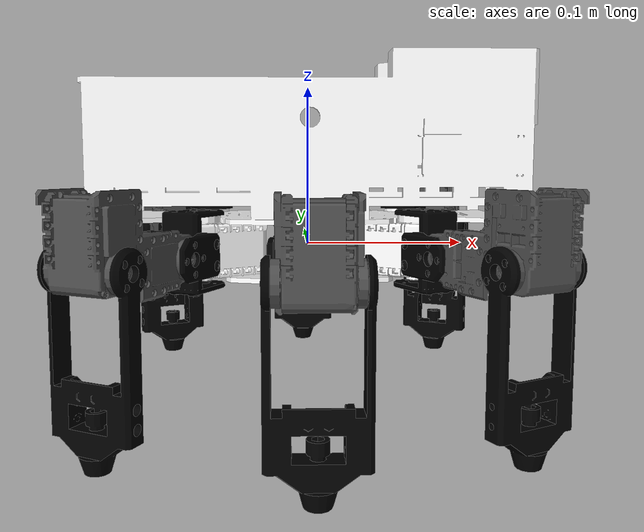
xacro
<?xml version="1.0" encoding="UTF-8" ?>
<robot xmlns:xacro="http://ros.org/wiki/xacro" name="reignblaze">

  <!-- Simplified model for simulation (no sensor accessories) -->

  <xacro:property name="pi" value="3.1415926535897931" />
  <xacro:property name="body_length_x" value="0.27" />
  <xacro:property name="body_length_y" value="0.09" />
  <xacro:property name="coxa_length" value="0.044" />
  <xacro:property name="femur_length" value="0.0545" />
  <xacro:property name="tibia_length" value="0.1019" />

  <link name="base_footprint"/>

  <joint name="base_joint" type="fixed">
    <parent link="base_footprint"/>
    <child link="base_link"/>
    <origin xyz="0 0 0" rpy="0 0 0"/>
  </joint>

  <link name="base_link"/>

  <joint name="body_joint" type="fixed">
    <parent link="base_link" />
    <child link="body_link" />
    <origin xyz="0.0 0.0 0.0" rpy="0.0 0.0 0.0" />
  </joint>

  <link name="body_link">
    <visual>
      <origin xyz="0.0 0.0 0.0" rpy="${pi/2} 0.0 0.0" />
      <geometry>
        <mesh filename="package://hexapod_description/meshes/reignblaze/body.stl" scale="0.001 0.001 0.001"/>
      </geometry>
      <material name="white">
        <color rgba="1.0 1.0 1.0 1.0"/>
      </material>
    </visual>
    <inertial>
      <origin xyz="0.0 0.0 0.0" rpy="0.0 0.0 0.0" />
      <mass value="0.84"/>
      <inertia
        ixx="0.001592" ixy="0.0"  ixz="0.0"
        iyy="0.006128" iyz="0.0"
        izz="0.005670" />
    </inertial>
  </link>

  <!-- Joint properties -->
  <xacro:property name="joint_lower_limit" value="-${pi}" />
  <xacro:property name="joint_upper_limit" value="${pi}" />
  <xacro:property name="joint_effort" value="6.0" />
  <xacro:property name="joint_velocity" value="0.524" />

  <!-- Leg macro -->
  <xacro:macro name="leg" params="side position x y angle axis">

    <!-- coxa -->
    <joint name="coxa_joint_${side}${position}" type="revolute">
      <origin xyz="${x} ${y} 0.0" rpy="0.0 0.0 ${angle}" />
      <parent link="body_link" />
      <child link="coxa_${side}${position}" />
      <axis xyz="0.0 0.0 1.0" />
      <limit lower="${joint_lower_limit}" upper="${joint_upper_limit}" effort="${joint_effort}" velocity="${joint_velocity}" />
    </joint>
    <link name="coxa_${side}${position}">
      <visual>
        <origin xyz="0.0 0.0 0.0" rpy="0.0 0.0 ${pi/2}"/>
        <geometry>
          <mesh filename="package://hexapod_description/meshes/reignblaze/coxa.stl" scale="0.001 0.001 0.001"/>
        </geometry>
        <material name="black">
          <color rgba="0.0 0.0 0.0 1.0"/>
        </material>
      </visual>
      <inertial>
        <origin xyz="-0.00225 0.0 0.0" rpy="0.0 0.0 0.0" />
        <mass value="0.056"/>
        <inertia
          ixx="0.000012245" ixy="0.0"  ixz="0.0"
          iyy="0.000010996" iyz="0.0"
          izz="0.000008308" />
      </inertial>
    </link>

    <!-- femur -->
    <joint name="femur_joint_${side}${position}" type="revolute">
      <origin xyz="${coxa_length} 0.0 0.0" rpy="-${pi/2} ${pi/2} 0.0" />
      <parent link="coxa_${side}${position}" />
      <child link="femur_${side}${position}" />
      <axis xyz="0.0 0.0 ${-axis}" />
      <limit lower="${joint_lower_limit}" upper="${joint_upper_limit}" effort="${joint_effort}" velocity="${joint_velocity}" />
    </joint>
    <link name="femur_${side}${position}">
      <visual>
        <origin xyz="0.0 0.0 0.0" rpy="0.0 -${pi/2} ${pi/2}"/>
        <geometry>
          <mesh filename="package://hexapod_description/meshes/reignblaze/femur.stl" scale="0.001 0.001 0.001"/>
        </geometry>
        <material name="dark">
          <color rgba="0.3 0.3 0.3 1.0"/>
        </material>
      </visual>
      <inertial>
        <origin xyz="0.0 -0.0135 0.0" rpy="0.0 0.0 0.0" />
        <mass value="0.056"/>
        <inertia
          ixx="0.000019133" ixy="0.0"  ixz="0.0"
          iyy="0.000012245" iyz="0.0"
          izz="0.000016445" />
      </inertial>
    </link>

    <!-- tibia -->
    <joint name="tibia_joint_${side}${position}" type="revolute">
      <origin xyz="0.0 -${femur_length} 0.0" rpy="${pi} 0.0 0.0" />
      <parent link="femur_${side}${position}" />
      <child link="tibia_${side}${position}" />
      <axis xyz="0.0 0.0 ${-axis}" />
      <limit lower="${joint_lower_limit}" upper="${joint_upper_limit}" effort="${joint_effort}" velocity="${joint_velocity}" />
    </joint>
    <link name="tibia_${side}${position}">
      <visual>
        <origin xyz="0.0 0.0 0.0" rpy="0.0 ${pi/2} ${pi/2}"/>
        <geometry>
          <mesh filename="package://hexapod_description/meshes/reignblaze/tibia.stl" scale="0.001 0.001 0.001"/>
        </geometry>
        <material name="black">
          <color rgba="0.0 0.0 0.0 1.0"/>
        </material>
      </visual>
      <inertial>
        <origin xyz="0.0516 0.0 0.0" rpy="0.0 0.0 0.0" />
        <mass value="0.014"/>
        <inertia
          ixx="0.000002749" ixy="0.0"  ixz="0.0"
          iyy="0.000007561" iyz="0.0"
          izz="0.000005046" />
      </inertial>
    </link>

  </xacro:macro>

  <!-- Build robot model -->
  <xacro:leg side="R" position="R" x="-0.065" y="-0.0325" angle="-${116.25*pi/180}" axis="1" />
  <xacro:leg side="R" position="M" x="0.0" y="-0.0625" angle="-${pi/2}" axis="1" />
  <xacro:leg side="R" position="F" x="0.065" y="-0.0325" angle="-${63.75*pi/180}" axis="1" />

  <xacro:leg side="L" position="R" x="-0.065" y="0.0325" angle="${116.25*pi/180}" axis="-1" />
  <xacro:leg side="L" position="M" x="0.0" y="0.0625" angle="${pi/2}" axis="-1" />
  <xacro:leg side="L" position="F" x="0.065" y="0.0325" angle="${63.75*pi/180}" axis="-1" />

</robot>
